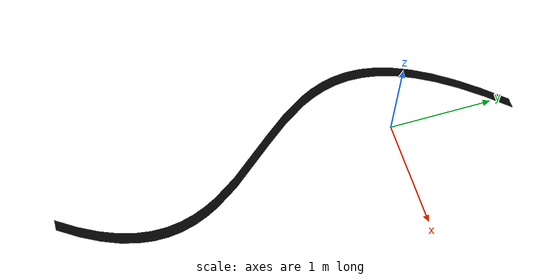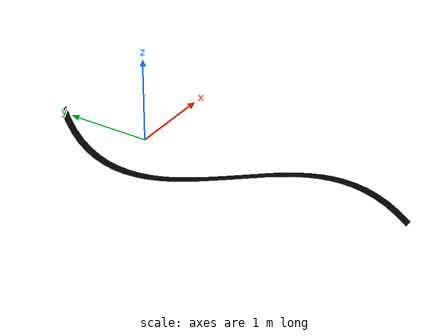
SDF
<?xml version="1.0" ?>
<sdf version="1.6">
  <model name="yol">
    <static>false</static>
    <link name="link">

      <!-- 📌 Kütle ve Atalet Tanımlaması -->
      <inertial>
        <mass>10.0</mass> <!-- Kütle değeri -->
        <inertia>
          <ixx>1.0</ixx> <iyy>1.0</iyy> <izz>1.0</izz>
          <ixy>0.0</ixy> <ixz>0.0</ixz> <iyz>0.0</iyz>
        </inertia>
      </inertial>

      <!-- 📌 Çarpışma (Collision) Geometrisi -->
      <collision name="collision">
        <geometry>
          <box>
            <size>0.001 0.001 0.001</size> <!-- STL yerine basit bir kutu kullan -->
          </box>
        </geometry>
        <surface>
          <contact>
            <ode>
              <max_vel>0.1</max_vel> <!-- Fazla hızlanmayı önler -->
              <min_depth>0.01</min_depth>
            </ode>
          </contact>
          <friction>
            <ode>
              <mu>1.0</mu> <!-- Sürtünme katsayısı (kaymasını önler) -->
              <mu2>1.0</mu2>
            </ode>
          </friction>
        </surface>
      </collision>

      <!-- 📌 Görsel (Visual) Tanımlaması -->
      <visual name="visual">
        <geometry>
          <mesh>
            <uri>model://yol/meshes/yol.stl</uri>
            <scale>0.1 0.1 0.1</scale>
          </mesh>
        </geometry>
	<material>
          <ambient>0 0 0 1</ambient>   <!-- Ortam ışığı yansıması -->
          <diffuse>0 0 0 1</diffuse>   <!-- Modelin ana rengi (siyah) -->
          <specular>0.1 0.1 0.1 1</specular> <!-- Yansıtıcı parlaklık (çok az parlak) -->
          <emissive>0 0 0 1</emissive>  <!-- Kendinden ışık yaymasın (sıfır) -->
        </material>
      </visual>

      <!-- 📌 Damping (Sönümleme) Değerleri -->
      <velocity_decay>
        <linear>0.2</linear> <!-- Doğrusal hız sönümleme -->
        <angular>0.2</angular> <!-- Açısal hız sönümleme (rastgele dönmeyi engeller) -->
      </velocity_decay>

    </link>
  </model>
</sdf>
